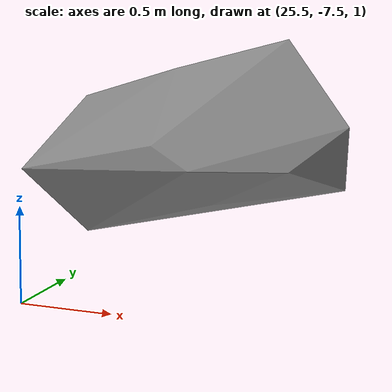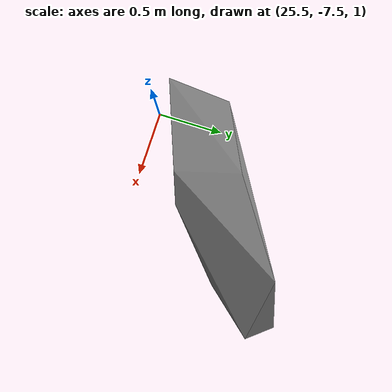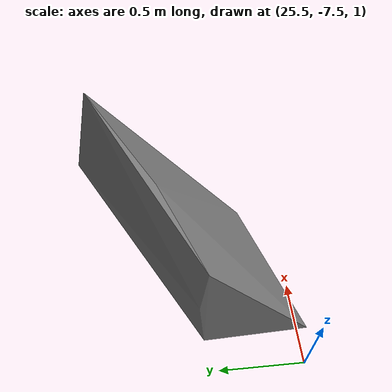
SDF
<sdf version="1.8">
 <model name="blue_mountains">
  <static>true</static>
  <link name="forest_22_19">
   <collision name="tree_32_trunk">
    <pose>25.95228 -6.483386 -0.1097277 0 0 2.183342</pose>
    <geometry><cylinder><radius>0.04776447</radius><length>2.877951</length></cylinder></geometry>
   </collision>
   <collision name="plant_32_crown_0">
    <pose>25.96326 -6.499018 -1.548703 0 0 2.183342</pose>
    <geometry>
     <mesh>
      <uri>model://blue_mountains/meshes/canopy_5_0.dae</uri>
      <scale>0.1910579 0.1910579 0.2163199</scale>
     </mesh>
    </geometry>
   </collision>
   <collision name="plant_32_crown_1">
    <pose>25.96326 -6.499018 -1.548703 0 0 2.183342</pose>
    <geometry>
     <mesh>
      <uri>model://blue_mountains/meshes/canopy_5_1.dae</uri>
      <scale>0.1910579 0.1910579 0.2163199</scale>
     </mesh>
    </geometry>
   </collision>
   <collision name="tree_41_trunk">
    <pose>20.90479 -6.517576 -0.4187304 0 0 0.01295783</pose>
    <geometry><cylinder><radius>0.04756802</radius><length>2.445235</length></cylinder></geometry>
   </collision>
   <collision name="plant_41_crown_0">
    <pose>20.88576 -6.517822 -1.641348 0 0 0.01295783</pose>
    <geometry>
     <mesh>
      <uri>model://blue_mountains/meshes/canopy_3_0.dae</uri>
      <scale>0.1902721 0.1902721 0.1817919</scale>
     </mesh>
    </geometry>
   </collision>
   <collision name="plant_41_crown_1">
    <pose>20.88576 -6.517822 -1.641348 0 0 0.01295783</pose>
    <geometry>
     <mesh>
      <uri>model://blue_mountains/meshes/canopy_3_1.dae</uri>
      <scale>0.1902721 0.1902721 0.1817919</scale>
     </mesh>
    </geometry>
   </collision>
   <collision name="tree_60_trunk">
    <pose>27.75974 -1.8924 -0.3366401 0 0 -1.756279</pose>
    <geometry><cylinder><radius>0.05753412</radius><length>2.641691</length></cylinder></geometry>
   </collision>
   <collision name="plant_60_crown_0">
    <pose>27.76398 -1.869781 -1.657486 0 0 -1.756279</pose>
    <geometry>
     <mesh>
      <uri>model://blue_mountains/meshes/canopy_8_0.dae</uri>
      <scale>0.2301365 0.2301365 0.1965655</scale>
     </mesh>
    </geometry>
   </collision>
   <collision name="plant_60_crown_1">
    <pose>27.76398 -1.869781 -1.657486 0 0 -1.756279</pose>
    <geometry>
     <mesh>
      <uri>model://blue_mountains/meshes/canopy_8_1.dae</uri>
      <scale>0.2301365 0.2301365 0.1965655</scale>
     </mesh>
    </geometry>
   </collision>
   <collision name="tree_83_trunk">
    <pose>24.31274 -2.672845 0.02972474 0 0 -1.544539</pose>
    <geometry><cylinder><radius>0.05488147</radius><length>3.502315</length></cylinder></geometry>
   </collision>
   <collision name="plant_83_crown_0">
    <pose>24.31216 -2.6509 -1.721433 0 0 -1.544539</pose>
    <geometry>
     <mesh>
      <uri>model://blue_mountains/meshes/canopy_8_0.dae</uri>
      <scale>0.2195259 0.2195259 0.2606036</scale>
     </mesh>
    </geometry>
   </collision>
   <collision name="plant_83_crown_1">
    <pose>24.31216 -2.6509 -1.721433 0 0 -1.544539</pose>
    <geometry>
     <mesh>
      <uri>model://blue_mountains/meshes/canopy_8_1.dae</uri>
      <scale>0.2195259 0.2195259 0.2606036</scale>
     </mesh>
    </geometry>
   </collision>
   <collision name="tree_84_trunk">
    <pose>22.31364 -3.006897 -0.3856055 0 0 3.031017</pose>
    <geometry><cylinder><radius>0.05738744</radius><length>2.976416</length></cylinder></geometry>
   </collision>
   <collision name="plant_84_crown_0">
    <pose>22.33646 -3.00943 -1.873814 0 0 3.031017</pose>
    <geometry>
     <mesh>
      <uri>model://blue_mountains/meshes/canopy_4_0.dae</uri>
      <scale>0.2295498 0.2295498 0.2217926</scale>
     </mesh>
    </geometry>
   </collision>
   <collision name="plant_84_crown_1">
    <pose>22.33646 -3.00943 -1.873814 0 0 3.031017</pose>
    <geometry>
     <mesh>
      <uri>model://blue_mountains/meshes/canopy_4_1.dae</uri>
      <scale>0.2295498 0.2295498 0.2217926</scale>
     </mesh>
    </geometry>
   </collision>
   <collision name="tree_119_trunk">
    <pose>22.82608 -7.425246 -0.4246871 0 0 -2.966389</pose>
    <geometry><cylinder><radius>0.04812457</radius><length>2.290545</length></cylinder></geometry>
   </collision>
   <collision name="plant_119_crown_0">
    <pose>22.84503 -7.42189 -1.56996 0 0 -2.966389</pose>
    <geometry>
     <mesh>
      <uri>model://blue_mountains/meshes/canopy_1_0.dae</uri>
      <scale>0.1924983 0.1924983 0.1691815</scale>
     </mesh>
    </geometry>
   </collision>
   <collision name="plant_119_crown_1">
    <pose>22.84503 -7.42189 -1.56996 0 0 -2.966389</pose>
    <geometry>
     <mesh>
      <uri>model://blue_mountains/meshes/canopy_1_1.dae</uri>
      <scale>0.1924983 0.1924983 0.1691815</scale>
     </mesh>
    </geometry>
   </collision>
   <collision name="tree_148_trunk">
    <pose>26.33068 -8.223141 -0.07156547 0 0 -1.735766</pose>
    <geometry><cylinder><radius>0.04582181</radius><length>2.646906</length></cylinder></geometry>
   </collision>
   <collision name="plant_148_crown_0">
    <pose>26.33369 -8.205061 -1.395019 0 0 -1.735766</pose>
    <geometry>
     <mesh>
      <uri>model://blue_mountains/meshes/canopy_1_0.dae</uri>
      <scale>0.1832872 0.1832872 0.1955027</scale>
     </mesh>
    </geometry>
   </collision>
   <collision name="plant_148_crown_1">
    <pose>26.33369 -8.205061 -1.395019 0 0 -1.735766</pose>
    <geometry>
     <mesh>
      <uri>model://blue_mountains/meshes/canopy_1_1.dae</uri>
      <scale>0.1832872 0.1832872 0.1955027</scale>
     </mesh>
    </geometry>
   </collision>
   <collision name="tree_164_trunk">
    <pose>27.83154 -5.411883 0.3280915 0 0 3.029006</pose>
    <geometry><cylinder><radius>0.06122242</radius><length>3.784367</length></cylinder></geometry>
   </collision>
   <collision name="plant_164_crown_0">
    <pose>27.85587 -5.414635 -1.564092 0 0 3.029006</pose>
    <geometry>
     <mesh>
      <uri>model://blue_mountains/meshes/canopy_0_0.dae</uri>
      <scale>0.2448897 0.2448897 0.2790949</scale>
     </mesh>
    </geometry>
   </collision>
   <collision name="plant_164_crown_1">
    <pose>27.85587 -5.414635 -1.564092 0 0 3.029006</pose>
    <geometry>
     <mesh>
      <uri>model://blue_mountains/meshes/canopy_0_1.dae</uri>
      <scale>0.2448897 0.2448897 0.2790949</scale>
     </mesh>
    </geometry>
   </collision>
   <collision name="tree_167_trunk">
    <pose>26.2176 -1.484008 -0.2425128 0 0 1.935555</pose>
    <geometry><cylinder><radius>0.05960972</radius><length>2.834899</length></cylinder></geometry>
   </collision>
   <collision name="plant_167_crown_0">
    <pose>26.22611 -1.506283 -1.659962 0 0 1.935555</pose>
    <geometry>
     <mesh>
      <uri>model://blue_mountains/meshes/canopy_0_0.dae</uri>
      <scale>0.2384389 0.2384389 0.2090722</scale>
     </mesh>
    </geometry>
   </collision>
   <collision name="plant_167_crown_1">
    <pose>26.22611 -1.506283 -1.659962 0 0 1.935555</pose>
    <geometry>
     <mesh>
      <uri>model://blue_mountains/meshes/canopy_0_1.dae</uri>
      <scale>0.2384389 0.2384389 0.2090722</scale>
     </mesh>
    </geometry>
   </collision>
   <collision name="tree_187_trunk">
    <pose>21.93531 -5.565367 -0.1471755 0 0 -1.462823</pose>
    <geometry><cylinder><radius>0.05199625</radius><length>3.049353</length></cylinder></geometry>
   </collision>
   <collision name="plant_187_crown_0">
    <pose>21.93307 -5.544689 -1.671852 0 0 -1.462823</pose>
    <geometry>
     <mesh><uri>model://blue_mountains/meshes/canopy_6_0.dae</uri><scale>0.207985 0.207985 0.2247744</scale></mesh>
    </geometry>
   </collision>
   <collision name="plant_187_crown_1">
    <pose>21.93307 -5.544689 -1.671852 0 0 -1.462823</pose>
    <geometry>
     <mesh><uri>model://blue_mountains/meshes/canopy_6_1.dae</uri><scale>0.207985 0.207985 0.2247744</scale></mesh>
    </geometry>
   </collision>
   <collision name="tree_232_trunk">
    <pose>25.16086 -2.375351 -0.05584259 0 0 2.215179</pose>
    <geometry><cylinder><radius>0.06506703</radius><length>3.299038</length></cylinder></geometry>
   </collision>
   <collision name="plant_232_crown_0">
    <pose>25.1765 -2.396158 -1.705361 0 0 2.215179</pose>
    <geometry>
     <mesh>
      <uri>model://blue_mountains/meshes/canopy_8_0.dae</uri>
      <scale>0.2602681 0.2602681 0.245478</scale>
     </mesh>
    </geometry>
   </collision>
   <collision name="plant_232_crown_1">
    <pose>25.1765 -2.396158 -1.705361 0 0 2.215179</pose>
    <geometry>
     <mesh>
      <uri>model://blue_mountains/meshes/canopy_8_1.dae</uri>
      <scale>0.2602681 0.2602681 0.245478</scale>
     </mesh>
    </geometry>
   </collision>
   <collision name="tree_252_trunk">
    <pose>24.70727 -4.553872 -0.1763913 0 0 0.3200899</pose>
    <geometry><cylinder><radius>0.05315557</radius><length>3.091526</length></cylinder></geometry>
   </collision>
   <collision name="plant_252_crown_0">
    <pose>24.68708 -4.560562 -1.722154 0 0 0.3200899</pose>
    <geometry>
     <mesh>
      <uri>model://blue_mountains/meshes/canopy_6_0.dae</uri>
      <scale>0.2126223 0.2126223 0.2278831</scale>
     </mesh>
    </geometry>
   </collision>
   <collision name="plant_252_crown_1">
    <pose>24.68708 -4.560562 -1.722154 0 0 0.3200899</pose>
    <geometry>
     <mesh>
      <uri>model://blue_mountains/meshes/canopy_6_1.dae</uri>
      <scale>0.2126223 0.2126223 0.2278831</scale>
     </mesh>
    </geometry>
   </collision>
   <collision name="tree_270_trunk">
    <pose>28.34435 -3.326491 0.06259257 0 0 2.800804</pose>
    <geometry><cylinder><radius>0.0541656</radius><length>3.387394</length></cylinder></geometry>
   </collision>
   <collision name="plant_270_crown_0">
    <pose>28.36477 -3.333733 -1.631104 0 0 2.800804</pose>
    <geometry>
     <mesh>
      <uri>model://blue_mountains/meshes/canopy_2_0.dae</uri>
      <scale>0.2166624 0.2166624 0.2492288</scale>
     </mesh>
    </geometry>
   </collision>
   <collision name="plant_270_crown_1">
    <pose>28.36477 -3.333733 -1.631104 0 0 2.800804</pose>
    <geometry>
     <mesh>
      <uri>model://blue_mountains/meshes/canopy_2_1.dae</uri>
      <scale>0.2166624 0.2166624 0.2492288</scale>
     </mesh>
    </geometry>
   </collision>
   <collision name="tree_303_trunk">
    <pose>22.7522 -5.55642 -0.3609487 0 0 -1.256195</pose>
    <geometry><cylinder><radius>0.04453488</radius><length>2.68631</length></cylinder></geometry>
   </collision>
   <collision name="plant_303_crown_0">
    <pose>22.74669 -5.53948 -1.704104 0 0 -1.256195</pose>
    <geometry>
     <mesh>
      <uri>model://blue_mountains/meshes/canopy_0_0.dae</uri>
      <scale>0.1781395 0.1781395 0.1981138</scale>
     </mesh>
    </geometry>
   </collision>
   <collision name="plant_303_crown_1">
    <pose>22.74669 -5.53948 -1.704104 0 0 -1.256195</pose>
    <geometry>
     <mesh>
      <uri>model://blue_mountains/meshes/canopy_0_1.dae</uri>
      <scale>0.1781395 0.1781395 0.1981138</scale>
     </mesh>
    </geometry>
   </collision>
   <collision name="tree_310_trunk">
    <pose>28.1472 -7.340248 -0.06400556 0 0 1.889045</pose>
    <geometry><cylinder><radius>0.05011486</radius><length>2.707314</length></cylinder></geometry>
   </collision>
   <collision name="plant_310_crown_0">
    <pose>28.15347 -7.359287 -1.417662 0 0 1.889045</pose>
    <geometry>
     <mesh>
      <uri>model://blue_mountains/meshes/canopy_3_0.dae</uri>
      <scale>0.2004594 0.2004594 0.2012762</scale>
     </mesh>
    </geometry>
   </collision>
   <collision name="plant_310_crown_1">
    <pose>28.15347 -7.359287 -1.417662 0 0 1.889045</pose>
    <geometry>
     <mesh>
      <uri>model://blue_mountains/meshes/canopy_3_1.dae</uri>
      <scale>0.2004594 0.2004594 0.2012762</scale>
     </mesh>
    </geometry>
   </collision>
   <collision name="tree_343_trunk">
    <pose>29.86873 -1.048272 0.06737366 0 0 2.130992</pose>
    <geometry><cylinder><radius>0.05306085</radius><length>3.163642</length></cylinder></geometry>
   </collision>
   <collision name="plant_343_crown_0">
    <pose>29.88001 -1.066252 -1.514447 0 0 2.130992</pose>
    <geometry>
     <mesh>
      <uri>model://blue_mountains/meshes/canopy_3_0.dae</uri>
      <scale>0.2122434 0.2122434 0.2352021</scale>
     </mesh>
    </geometry>
   </collision>
   <collision name="plant_343_crown_1">
    <pose>29.88001 -1.066252 -1.514447 0 0 2.130992</pose>
    <geometry>
     <mesh>
      <uri>model://blue_mountains/meshes/canopy_3_1.dae</uri>
      <scale>0.2122434 0.2122434 0.2352021</scale>
     </mesh>
    </geometry>
   </collision>
   <collision name="tree_407_trunk">
    <pose>27.96102 -2.113021 -0.6711497 0 0 0.4413583</pose>
    <geometry><cylinder><radius>0.03804867</radius><length>1.962774</length></cylinder></geometry>
   </collision>
   <collision name="plant_407_crown_0">
    <pose>27.94725 -2.119522 -1.652537 0 0 0.4413583</pose>
    <geometry>
     <mesh>
      <uri>model://blue_mountains/meshes/canopy_6_0.dae</uri>
      <scale>0.1521947 0.1521947 0.1446803</scale>
     </mesh>
    </geometry>
   </collision>
   <collision name="plant_407_crown_1">
    <pose>27.94725 -2.119522 -1.652537 0 0 0.4413583</pose>
    <geometry>
     <mesh>
      <uri>model://blue_mountains/meshes/canopy_6_1.dae</uri>
      <scale>0.1521947 0.1521947 0.1446803</scale>
     </mesh>
    </geometry>
   </collision>
   <collision name="tree_437_trunk">
    <pose>23.65912 -7.17725 0.4240624 0 0 -1.024125</pose>
    <geometry><cylinder><radius>0.07124746</radius><length>3.978403</length></cylinder></geometry>
   </collision>
   <collision name="plant_437_crown_0">
    <pose>23.6443 -7.152905 -1.565139 0 0 -1.024125</pose>
    <geometry>
     <mesh>
      <uri>model://blue_mountains/meshes/canopy_2_0.dae</uri>
      <scale>0.2849898 0.2849898 0.2927125</scale>
     </mesh>
    </geometry>
   </collision>
   <collision name="plant_437_crown_1">
    <pose>23.6443 -7.152905 -1.565139 0 0 -1.024125</pose>
    <geometry>
     <mesh>
      <uri>model://blue_mountains/meshes/canopy_2_1.dae</uri>
      <scale>0.2849898 0.2849898 0.2927125</scale>
     </mesh>
    </geometry>
   </collision>
   <collision name="tree_453_trunk">
    <pose>22.5796 -8.309916 -0.2638523 0 0 -0.5886014</pose>
    <geometry><cylinder><radius>0.05429932</radius><length>2.491721</length></cylinder></geometry>
   </collision>
   <collision name="plant_453_crown_0">
    <pose>22.56154 -8.297857 -1.509713 0 0 -0.5886014</pose>
    <geometry>
     <mesh>
      <uri>model://blue_mountains/meshes/canopy_7_0.dae</uri>
      <scale>0.2171973 0.2171973 0.1873434</scale>
     </mesh>
    </geometry>
   </collision>
   <collision name="plant_453_crown_1">
    <pose>22.56154 -8.297857 -1.509713 0 0 -0.5886014</pose>
    <geometry>
     <mesh>
      <uri>model://blue_mountains/meshes/canopy_7_1.dae</uri>
      <scale>0.2171973 0.2171973 0.1873434</scale>
     </mesh>
    </geometry>
   </collision>
   <visual name="forest_visual">
    <geometry><mesh><uri>model://blue_mountains/meshes/forest_22_19.dae</uri></mesh></geometry>
    <cast_shadows>false</cast_shadows>
   </visual>
  </link>
 </model>
</sdf>
